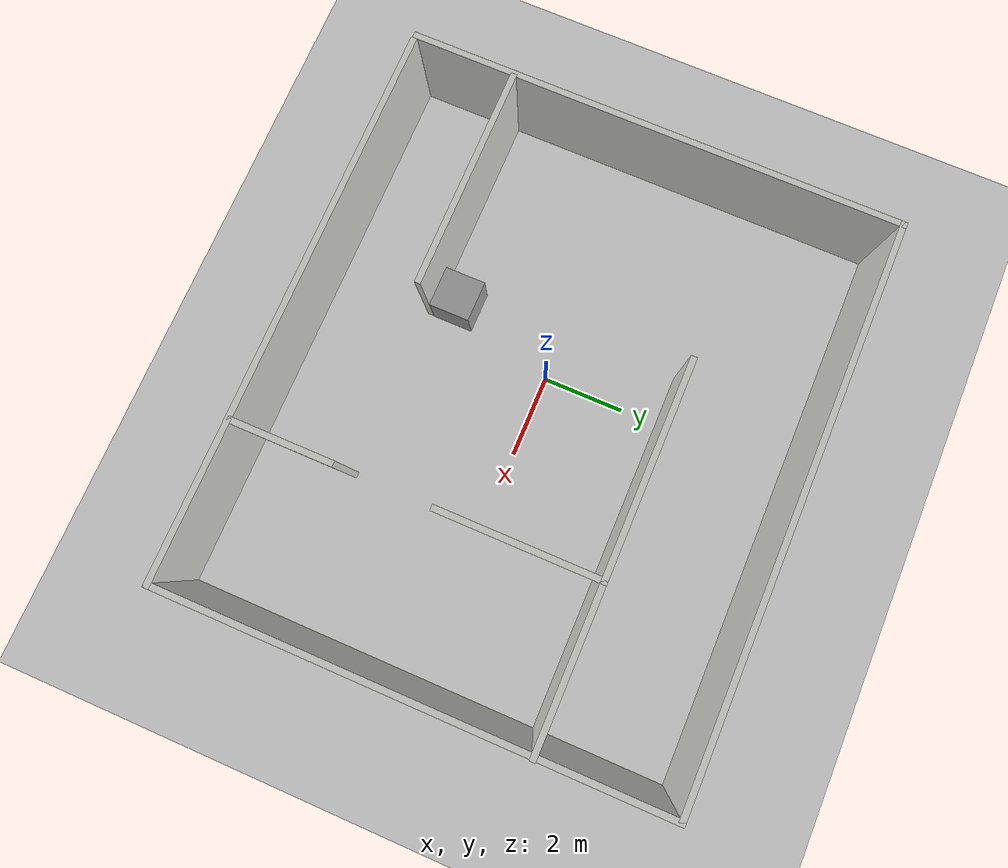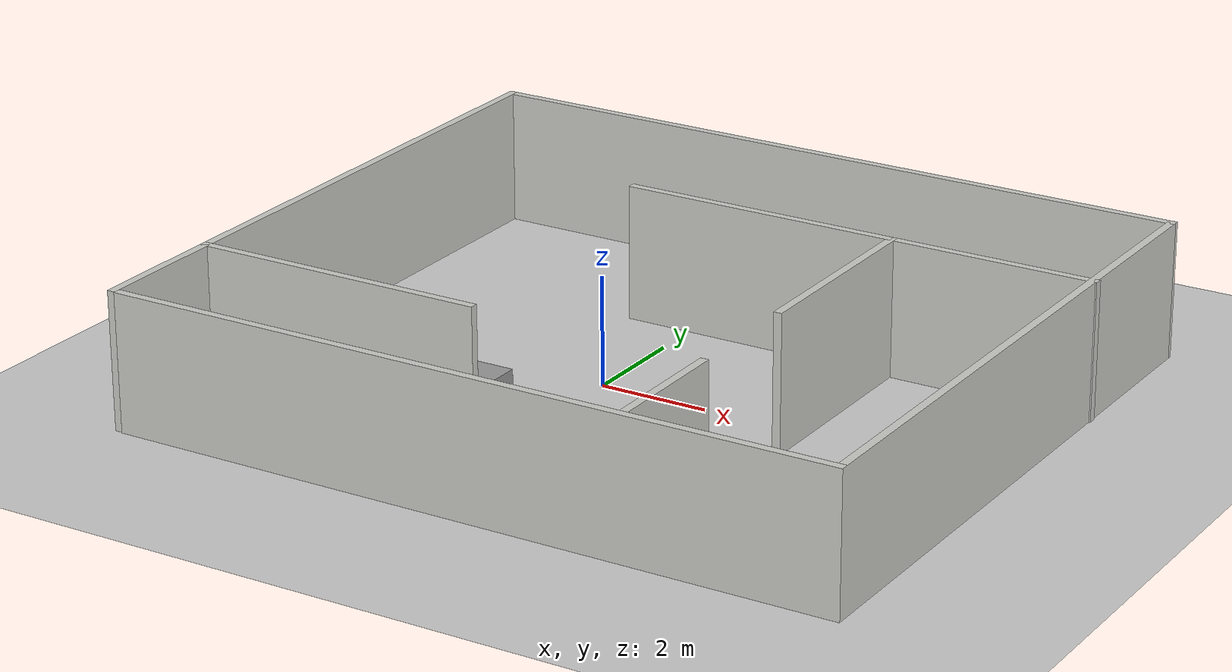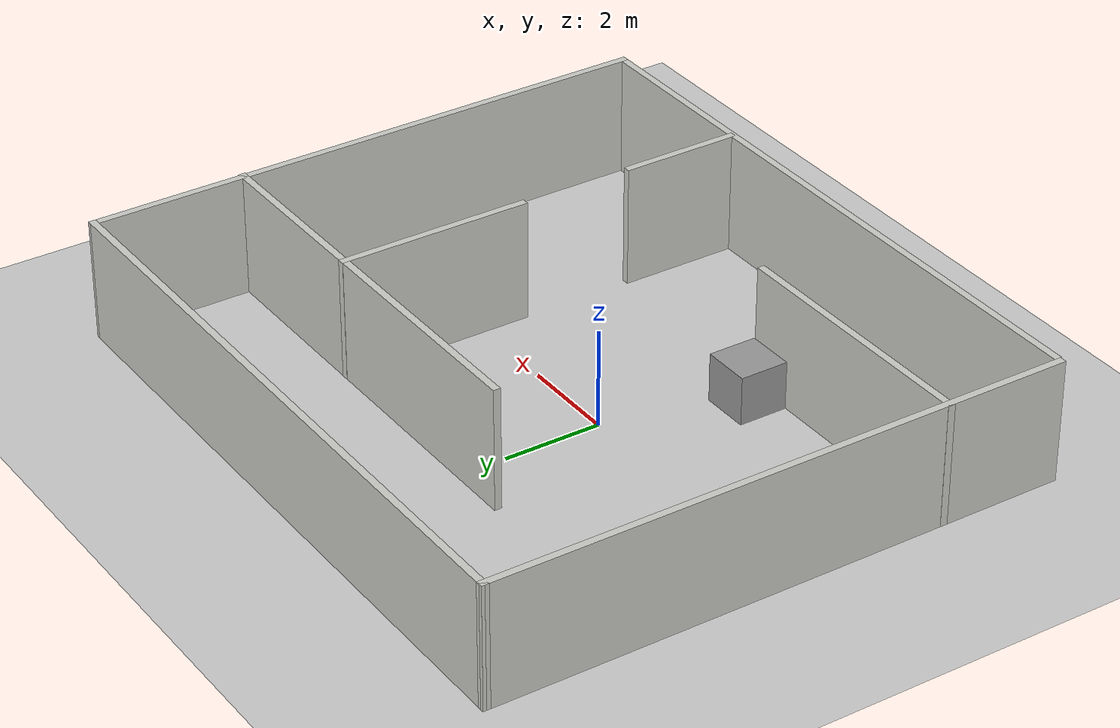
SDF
<sdf version="1.7">
 <world name="default">
  <light name="sun" type="directional">
   <pose>0 0 10 0 -0 0</pose>
   <diffuse>0.8 0.8 0.8 1</diffuse>
   <specular>0.2 0.2 0.2 1</specular>
   <attenuation>
    <range>1000</range>
    <constant>0.9</constant>
    <linear>0.01</linear>
    <quadratic>0.001</quadratic>
   </attenuation>
   <direction>-0.5 0.1 -0.9</direction>
   <spot><inner_angle>0</inner_angle><outer_angle>0</outer_angle><falloff>0</falloff></spot>
  </light>
  <model name="ground_plane">
   <static>1</static>
   <link name="link">
    <collision name="collision">
     <geometry><plane><normal>0 0 1</normal><size>100 100</size></plane></geometry>
     <surface>
      <contact><collide_bitmask>65535</collide_bitmask></contact>
      <friction><ode><mu>100</mu><mu2>50</mu2></ode></friction>
     </surface>
    </collision>
    <visual name="visual">
     <cast_shadows>0</cast_shadows>
     <geometry><plane><normal>0 0 1</normal><size>100 100</size></plane></geometry>
     <material>
      <script><uri>file://media/materials/scripts/gazebo.material</uri><name>Gazebo/Grey</name></script>
     </material>
    </visual>
   </link>
  </model>
  <gravity>0 0 -9.8</gravity>
  <magnetic_field>6e-06 2.3e-05 -4.2e-05</magnetic_field>
  <atmosphere type="adiabatic"/>
  <physics type="ode">
   <max_step_size>0.001</max_step_size>
   <real_time_factor>1</real_time_factor>
   <real_time_update_rate>1000</real_time_update_rate>
  </physics>
  <scene><ambient>0.4 0.4 0.4 1</ambient><background>0.7 0.7 0.7 1</background><shadows>1</shadows></scene>
  <spherical_coordinates>
   <surface_model>EARTH_WGS84</surface_model>
   <latitude_deg>0</latitude_deg>
   <longitude_deg>0</longitude_deg>
   <elevation>0</elevation>
   <heading_deg>0</heading_deg>
  </spherical_coordinates>
  <model name="momanip">
   <pose>0.919686 0.210381 0 0 -0 0</pose>
   <link name="Wall_12">
    <collision name="Wall_12_Collision">
     <geometry><box><size>12 0.15 2.5</size></box></geometry>
     <pose>0 0 1.25 0 -0 0</pose>
    </collision>
    <visual name="Wall_12_Visual">
     <pose>0 0 1.25 0 -0 0</pose>
     <geometry><box><size>12 0.15 2.5</size></box></geometry>
     <material>
      <script><uri>file://media/materials/scripts/gazebo.material</uri><name>Gazebo/CeilingTiled</name></script>
      <ambient>1 1 1 1</ambient>
     </material>
     <meta><layer>0</layer></meta>
    </visual>
    <pose>-6.76138 0.012311 0 0 -0 -1.5708</pose>
   </link>
   <link name="Wall_14">
    <collision name="Wall_14_Collision">
     <geometry><box><size>13.6502 0.15 2.5</size></box></geometry>
     <pose>0 0 1.25 0 -0 0</pose>
    </collision>
    <visual name="Wall_14_Visual">
     <pose>0 0 1.25 0 -0 0</pose>
     <geometry><box><size>13.6502 0.15 2.5</size></box></geometry>
     <material>
      <script><uri>file://media/materials/scripts/gazebo.material</uri><name>Gazebo/CeilingTiled</name></script>
      <ambient>1 1 1 1</ambient>
     </material>
     <meta><layer>0</layer></meta>
    </visual>
    <pose>-0.011279 5.92493 0 0 -0 -0.001834</pose>
   </link>
   <link name="Wall_18">
    <collision name="Wall_18_Collision">
     <geometry><box><size>9 0.15 2.5</size></box></geometry>
     <pose>0 0 1.25 0 -0 0</pose>
    </collision>
    <visual name="Wall_18_Visual">
     <pose>0 0 1.25 0 -0 0</pose>
     <geometry><box><size>9 0.15 2.5</size></box></geometry>
     <material>
      <script><uri>file://media/materials/scripts/gazebo.material</uri><name>Gazebo/CeilingTiled</name></script>
      <ambient>1 1 1 1</ambient>
     </material>
     <meta><layer>0</layer></meta>
    </visual>
    <pose>2.33974 2.73786 0 0 -0 0</pose>
   </link>
   <link name="Wall_21">
    <collision name="Wall_21_Collision">
     <geometry><box><size>4 0.15 2.5</size></box></geometry>
     <pose>0 0 1.25 0 -0 0</pose>
    </collision>
    <visual name="Wall_21_Visual">
     <pose>0 0 1.25 0 -0 0</pose>
     <geometry><box><size>4 0.15 2.5</size></box></geometry>
     <material>
      <script><uri>file://media/materials/scripts/gazebo.material</uri><name>Gazebo/CeilingTiled</name></script>
      <ambient>1 1 1 1</ambient>
     </material>
     <meta><layer>0</layer></meta>
    </visual>
    <pose>3.00426 0.816237 0 0 -0 -1.5708</pose>
   </link>
   <link name="Wall_24">
    <collision name="Wall_24_Collision">
     <geometry><box><size>2.5 0.15 2.5</size></box></geometry>
     <pose>0 0 1.25 0 -0 0</pose>
    </collision>
    <visual name="Wall_24_Visual">
     <pose>0 0 1.25 0 -0 0</pose>
     <geometry><box><size>2.5 0.15 2.5</size></box></geometry>
     <material>
      <script><uri>file://media/materials/scripts/gazebo.material</uri><name>Gazebo/CeilingTiled</name></script>
      <ambient>1 1 1 1</ambient>
     </material>
     <meta><layer>0</layer></meta>
    </visual>
    <pose>2.97978 -4.7028 0 0 -0 -1.5708</pose>
   </link>
   <link name="Wall_28">
    <collision name="Wall_28_Collision">
     <geometry><box><size>5.5 0.15 2.5</size></box></geometry>
     <pose>0 0 1.25 0 -0 0</pose>
    </collision>
    <visual name="Wall_28_Visual">
     <pose>0 0 1.25 0 -0 0</pose>
     <geometry><box><size>5.5 0.15 2.5</size></box></geometry>
     <material>
      <script><uri>file://media/materials/scripts/gazebo.material</uri><name>Gazebo/CeilingTiled</name></script>
      <ambient>1 1 1 1</ambient>
     </material>
     <meta><layer>0</layer></meta>
    </visual>
    <pose>-4.08974 -3.45744 0 0 -0 0</pose>
   </link>
   <link name="Wall_8">
    <collision name="Wall_8_Collision">
     <geometry><box><size>13.5 0.15 2.5</size></box></geometry>
     <pose>0 0 1.25 0 -0 0</pose>
    </collision>
    <visual name="Wall_8_Visual">
     <pose>0 0 1.25 0 -0 0</pose>
     <geometry><box><size>13.5 0.15 2.5</size></box></geometry>
     <material>
      <script><uri>file://media/materials/scripts/gazebo.material</uri><name>Gazebo/CeilingTiled</name></script>
      <ambient>1 1 1 1</ambient>
     </material>
     <meta><layer>0</layer></meta>
    </visual>
    <pose>0.063821 -5.93745 0 0 -0 0</pose>
   </link>
   <link name="Wall_9">
    <collision name="Wall_9_Collision">
     <geometry><box><size>12 0.15 2.5</size></box></geometry>
     <pose>0 0 1.25 0 -0 0</pose>
    </collision>
    <visual name="Wall_9_Visual">
     <pose>0 0 1.25 0 -0 0</pose>
     <geometry><box><size>12 0.15 2.5</size></box></geometry>
     <material>
      <script><uri>file://media/materials/scripts/gazebo.material</uri><name>Gazebo/CeilingTiled</name></script>
      <ambient>1 1 1 1</ambient>
     </material>
     <meta><layer>0</layer></meta>
    </visual>
    <pose>6.73882 -0.012448 0 0 -0 1.5708</pose>
   </link>
   <static>1</static>
  </model>
  <model name="unit_box">
   <pose>-0.912403 -2.66019 0.499995 -1e-05 -0 0</pose>
   <link name="link">
    <inertial>
     <mass>1</mass>
     <inertia>
      <ixx>0.166667</ixx>
      <ixy>0</ixy>
      <ixz>0</ixz>
      <iyy>0.166667</iyy>
      <iyz>0</iyz>
      <izz>0.166667</izz>
     </inertia>
    </inertial>
    <collision name="collision"><geometry><box><size>1 1 1</size></box></geometry></collision>
    <visual name="visual">
     <geometry><box><size>1 1 1</size></box></geometry>
     <material>
      <script><name>Gazebo/Grey</name><uri>file://media/materials/scripts/gazebo.material</uri></script>
     </material>
    </visual>
   </link>
  </model>
 </world>
</sdf>
